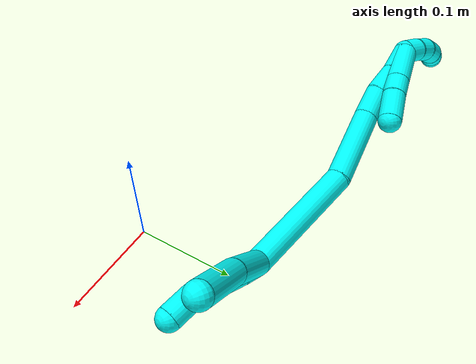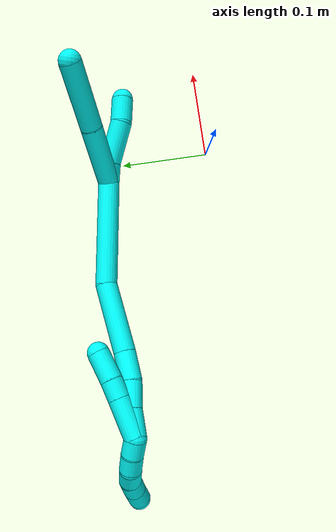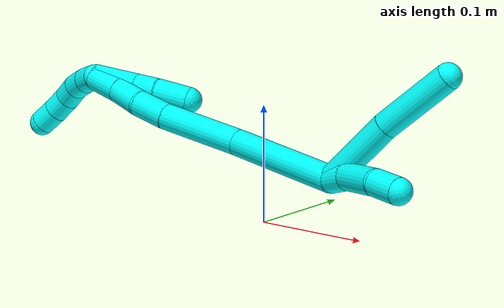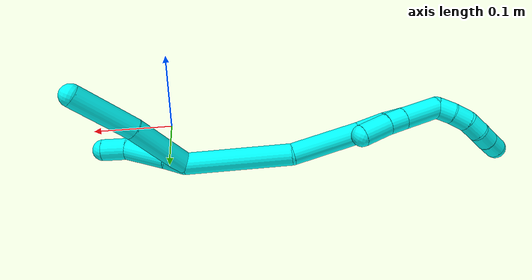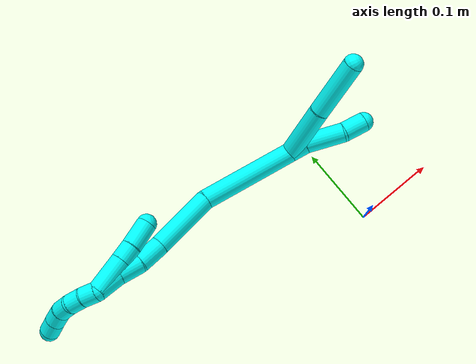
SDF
<sdf version="1.7">
 <world name="default">
  <model name="3">
   <static>0</static>
   <link name="3">
    <collision name="collision-cylinder-e_1_2_8">
     <pose>-0.001816 -0.020387 -0.03132 2.56457 -0.048566 -0.163305</pose>
     <geometry><cylinder><radius>0.0125</radius><length>0.074831</length></cylinder></geometry>
     <surface>
      <friction><ode><mu>1.16</mu><mu2>1.16</mu2><slip1>0</slip1><slip2>0</slip2></ode></friction>
      <contact><ode><kp>1e+06</kp><kd>1</kd><max_vel>0</max_vel><min_depth>0.001</min_depth></ode></contact>
     </surface>
    </collision>
    <visual name="visual-cylinder-e_1_2_8">
     <pose>-0.001816 -0.020387 -0.03132 2.56457 -0.048566 -0.163305</pose>
     <geometry><cylinder><radius>0.0125</radius><length>0.074831</length></cylinder></geometry>
     <material><ambient>0.003922 1 0.996078 1</ambient></material>
    </visual>
    <collision name="collision-cylinder-e_2_8_6">
     <pose>-0.002241 -0.059493 -0.095203 2.61985 0.03704 0.138544</pose>
     <geometry><cylinder><radius>0.0125</radius><length>0.075169</length></cylinder></geometry>
     <surface>
      <friction><ode><mu>1.16</mu><mu2>1.16</mu2><slip1>0</slip1><slip2>0</slip2></ode></friction>
      <contact><ode><kp>1e+06</kp><kd>1</kd><max_vel>0</max_vel><min_depth>0.001</min_depth></ode></contact>
     </surface>
    </collision>
    <visual name="visual-cylinder-e_2_8_6">
     <pose>-0.002241 -0.059493 -0.095203 2.61985 0.03704 0.138544</pose>
     <geometry><cylinder><radius>0.0125</radius><length>0.075169</length></cylinder></geometry>
     <material><ambient>0.003922 1 0.996078 1</ambient></material>
    </visual>
    <collision name="collision-cylinder-e_1_2_9">
     <pose>0.001102 0.000188 -0.011293 -3.12497 0.097249 -2.80317</pose>
     <geometry><cylinder><radius>0.0125</radius><length>0.022696</length></cylinder></geometry>
     <surface>
      <friction><ode><mu>1.16</mu><mu2>1.16</mu2><slip1>0</slip1><slip2>0</slip2></ode></friction>
      <contact><ode><kp>1e+06</kp><kd>1</kd><max_vel>0</max_vel><min_depth>0.001</min_depth></ode></contact>
     </surface>
    </collision>
    <visual name="visual-cylinder-e_1_2_9">
     <pose>0.001102 0.000188 -0.011293 -3.12497 0.097249 -2.80317</pose>
     <geometry><cylinder><radius>0.0125</radius><length>0.022696</length></cylinder></geometry>
     <material><ambient>0.003922 1 0.996078 1</ambient></material>
    </visual>
    <collision name="collision-cylinder-e_2_9_10">
     <pose>0.004009 0.007282 -0.045813 -2.85256 0.074369 -0.500535</pose>
     <geometry><cylinder><radius>0.0125</radius><length>0.048599</length></cylinder></geometry>
     <surface>
      <friction><ode><mu>1.16</mu><mu2>1.16</mu2><slip1>0</slip1><slip2>0</slip2></ode></friction>
      <contact><ode><kp>1e+06</kp><kd>1</kd><max_vel>0</max_vel><min_depth>0.001</min_depth></ode></contact>
     </surface>
    </collision>
    <visual name="visual-cylinder-e_2_9_10">
     <pose>0.004009 0.007282 -0.045813 -2.85256 0.074369 -0.500535</pose>
     <geometry><cylinder><radius>0.0125</radius><length>0.048599</length></cylinder></geometry>
     <material><ambient>0.003922 1 0.996078 1</ambient></material>
    </visual>
    <collision name="collision-cylinder-e_3_10_5">
     <pose>0.010963 0.018117 -0.081849 -2.84401 0.366922 -1.78253</pose>
     <geometry><cylinder><radius>0.0125</radius><length>0.028705</length></cylinder></geometry>
     <surface>
      <friction><ode><mu>1.16</mu><mu2>1.16</mu2><slip1>0</slip1><slip2>0</slip2></ode></friction>
      <contact><ode><kp>1e+06</kp><kd>1</kd><max_vel>0</max_vel><min_depth>0.001</min_depth></ode></contact>
     </surface>
    </collision>
    <visual name="visual-cylinder-e_3_10_5">
     <pose>0.010963 0.018117 -0.081849 -2.84401 0.366922 -1.78253</pose>
     <geometry><cylinder><radius>0.0125</radius><length>0.028705</length></cylinder></geometry>
     <material><ambient>0.003922 1 0.996078 1</ambient></material>
    </visual>
    <collision name="collision-cylinder-e_1_2_11">
     <pose>-0.024529 -0.016387 0.054368 0.292749 -0.407758 -0.060943</pose>
     <geometry><cylinder><radius>0.0125</radius><length>0.12371</length></cylinder></geometry>
     <surface>
      <friction><ode><mu>1.16</mu><mu2>1.16</mu2><slip1>0</slip1><slip2>0</slip2></ode></friction>
      <contact><ode><kp>1e+06</kp><kd>1</kd><max_vel>0</max_vel><min_depth>0.001</min_depth></ode></contact>
     </surface>
    </collision>
    <visual name="visual-cylinder-e_1_2_11">
     <pose>-0.024529 -0.016387 0.054368 0.292749 -0.407758 -0.060943</pose>
     <geometry><cylinder><radius>0.0125</radius><length>0.12371</length></cylinder></geometry>
     <material><ambient>0.003922 1 0.996078 1</ambient></material>
    </visual>
    <collision name="collision-cylinder-e_2_11_12">
     <pose>-0.074828 -0.037916 0.139777 0.16417 -0.686242 -0.058765</pose>
     <geometry><cylinder><radius>0.0125</radius><length>0.081341</length></cylinder></geometry>
     <surface>
      <friction><ode><mu>1.16</mu><mu2>1.16</mu2><slip1>0</slip1><slip2>0</slip2></ode></friction>
      <contact><ode><kp>1e+06</kp><kd>1</kd><max_vel>0</max_vel><min_depth>0.001</min_depth></ode></contact>
     </surface>
    </collision>
    <visual name="visual-cylinder-e_2_11_12">
     <pose>-0.074828 -0.037916 0.139777 0.16417 -0.686242 -0.058765</pose>
     <geometry><cylinder><radius>0.0125</radius><length>0.081341</length></cylinder></geometry>
     <material><ambient>0.003922 1 0.996078 1</ambient></material>
    </visual>
    <collision name="collision-cylinder-e_3_12_13">
     <pose>-0.111285 -0.046657 0.182954 0.288237 -0.701118 -0.106034</pose>
     <geometry><cylinder><radius>0.0125</radius><length>0.033133</length></cylinder></geometry>
     <surface>
      <friction><ode><mu>1.16</mu><mu2>1.16</mu2><slip1>0</slip1><slip2>0</slip2></ode></friction>
      <contact><ode><kp>1e+06</kp><kd>1</kd><max_vel>0</max_vel><min_depth>0.001</min_depth></ode></contact>
     </surface>
    </collision>
    <visual name="visual-cylinder-e_3_12_13">
     <pose>-0.111285 -0.046657 0.182954 0.288237 -0.701118 -0.106034</pose>
     <geometry><cylinder><radius>0.0125</radius><length>0.033133</length></cylinder></geometry>
     <material><ambient>0.003922 1 0.996078 1</ambient></material>
    </visual>
    <collision name="collision-cylinder-e_4_13_14">
     <pose>-0.129685 -0.055934 0.206984 0.445474 -0.529558 -0.122672</pose>
     <geometry><cylinder><radius>0.0125</radius><length>0.030541</length></cylinder></geometry>
     <surface>
      <friction><ode><mu>1.16</mu><mu2>1.16</mu2><slip1>0</slip1><slip2>0</slip2></ode></friction>
      <contact><ode><kp>1e+06</kp><kd>1</kd><max_vel>0</max_vel><min_depth>0.001</min_depth></ode></contact>
     </surface>
    </collision>
    <visual name="visual-cylinder-e_4_13_14">
     <pose>-0.129685 -0.055934 0.206984 0.445474 -0.529558 -0.122672</pose>
     <geometry><cylinder><radius>0.0125</radius><length>0.030541</length></cylinder></geometry>
     <material><ambient>0.003922 1 0.996078 1</ambient></material>
    </visual>
    <collision name="collision-cylinder-e_5_14_1">
     <pose>-0.146893 -0.065702 0.23061 0.335332 -0.652437 -0.114395</pose>
     <geometry><cylinder><radius>0.0125</radius><length>0.031274</length></cylinder></geometry>
     <surface>
      <friction><ode><mu>1.16</mu><mu2>1.16</mu2><slip1>0</slip1><slip2>0</slip2></ode></friction>
      <contact><ode><kp>1e+06</kp><kd>1</kd><max_vel>0</max_vel><min_depth>0.001</min_depth></ode></contact>
     </surface>
    </collision>
    <visual name="visual-cylinder-e_5_14_1">
     <pose>-0.146893 -0.065702 0.23061 0.335332 -0.652437 -0.114395</pose>
     <geometry><cylinder><radius>0.0125</radius><length>0.031274</length></cylinder></geometry>
     <material><ambient>0.003922 1 0.996078 1</ambient></material>
    </visual>
    <collision name="collision-cylinder-e_1_1_15">
     <pose>-0.156421 -0.070429 0.252323 0.063902 -0.00343 -0.00011</pose>
     <geometry><cylinder><radius>0.0125</radius><length>0.02</length></cylinder></geometry>
     <surface>
      <friction><ode><mu>1.16</mu><mu2>1.16</mu2><slip1>0</slip1><slip2>0</slip2></ode></friction>
      <contact><ode><kp>1e+06</kp><kd>1</kd><max_vel>0</max_vel><min_depth>0.001</min_depth></ode></contact>
     </surface>
    </collision>
    <visual name="visual-cylinder-e_1_1_15">
     <pose>-0.156421 -0.070429 0.252323 0.063902 -0.00343 -0.00011</pose>
     <geometry><cylinder><radius>0.0125</radius><length>0.02</length></cylinder></geometry>
     <material><ambient>0.003922 1 0.996078 1</ambient></material>
    </visual>
    <collision name="collision-cylinder-e_2_15_16">
     <pose>-0.156086 -0.070177 0.272256 -0.089217 0.036946 -0.001649</pose>
     <geometry><cylinder><radius>0.0125</radius><length>0.02</length></cylinder></geometry>
     <surface>
      <friction><ode><mu>1.16</mu><mu2>1.16</mu2><slip1>0</slip1><slip2>0</slip2></ode></friction>
      <contact><ode><kp>1e+06</kp><kd>1</kd><max_vel>0</max_vel><min_depth>0.001</min_depth></ode></contact>
     </surface>
    </collision>
    <visual name="visual-cylinder-e_2_15_16">
     <pose>-0.156086 -0.070177 0.272256 -0.089217 0.036946 -0.001649</pose>
     <geometry><cylinder><radius>0.0125</radius><length>0.02</length></cylinder></geometry>
     <material><ambient>0.003922 1 0.996078 1</ambient></material>
    </visual>
    <collision name="collision-cylinder-e_3_16_17">
     <pose>-0.154022 -0.065974 0.291491 -0.342855 0.170289 -0.029551</pose>
     <geometry><cylinder><radius>0.0125</radius><length>0.02</length></cylinder></geometry>
     <surface>
      <friction><ode><mu>1.16</mu><mu2>1.16</mu2><slip1>0</slip1><slip2>0</slip2></ode></friction>
      <contact><ode><kp>1e+06</kp><kd>1</kd><max_vel>0</max_vel><min_depth>0.001</min_depth></ode></contact>
     </surface>
    </collision>
    <visual name="visual-cylinder-e_3_16_17">
     <pose>-0.154022 -0.065974 0.291491 -0.342855 0.170289 -0.029551</pose>
     <geometry><cylinder><radius>0.0125</radius><length>0.02</length></cylinder></geometry>
     <material><ambient>0.003922 1 0.996078 1</ambient></material>
    </visual>
    <collision name="collision-cylinder-e_4_17_18">
     <pose>-0.152019 -0.057335 0.309231 -0.561951 0.030829 -0.008898</pose>
     <geometry><cylinder><radius>0.0125</radius><length>0.02</length></cylinder></geometry>
     <surface>
      <friction><ode><mu>1.16</mu><mu2>1.16</mu2><slip1>0</slip1><slip2>0</slip2></ode></friction>
      <contact><ode><kp>1e+06</kp><kd>1</kd><max_vel>0</max_vel><min_depth>0.001</min_depth></ode></contact>
     </surface>
    </collision>
    <visual name="visual-cylinder-e_4_17_18">
     <pose>-0.152019 -0.057335 0.309231 -0.561951 0.030829 -0.008898</pose>
     <geometry><cylinder><radius>0.0125</radius><length>0.02</length></cylinder></geometry>
     <material><ambient>0.003922 1 0.996078 1</ambient></material>
    </visual>
    <collision name="collision-cylinder-e_5_18_4">
     <pose>-0.15205 -0.046483 0.326016 -0.585897 -0.033952 0.010242</pose>
     <geometry><cylinder><radius>0.0125</radius><length>0.02</length></cylinder></geometry>
     <surface>
      <friction><ode><mu>1.16</mu><mu2>1.16</mu2><slip1>0</slip1><slip2>0</slip2></ode></friction>
      <contact><ode><kp>1e+06</kp><kd>1</kd><max_vel>0</max_vel><min_depth>0.001</min_depth></ode></contact>
     </surface>
    </collision>
    <visual name="visual-cylinder-e_5_18_4">
     <pose>-0.15205 -0.046483 0.326016 -0.585897 -0.033952 0.010242</pose>
     <geometry><cylinder><radius>0.0125</radius><length>0.02</length></cylinder></geometry>
     <material><ambient>0.003922 1 0.996078 1</ambient></material>
    </visual>
    <collision name="collision-cylinder-e_1_1_19">
     <pose>-0.141212 -0.070041 0.225551 3.12665 0.734779 3.10278</pose>
     <geometry><cylinder><radius>0.0125</radius><length>0.045268</length></cylinder></geometry>
     <surface>
      <friction><ode><mu>1.16</mu><mu2>1.16</mu2><slip1>0</slip1><slip2>0</slip2></ode></friction>
      <contact><ode><kp>1e+06</kp><kd>1</kd><max_vel>0</max_vel><min_depth>0.001</min_depth></ode></contact>
     </surface>
    </collision>
    <visual name="visual-cylinder-e_1_1_19">
     <pose>-0.141212 -0.070041 0.225551 3.12665 0.734779 3.10278</pose>
     <geometry><cylinder><radius>0.0125</radius><length>0.045268</length></cylinder></geometry>
     <material><ambient>0.003922 1 0.996078 1</ambient></material>
    </visual>
    <collision name="collision-cylinder-e_2_19_20">
     <pose>-0.118826 -0.07048 0.200935 3.1176 0.744623 3.08018</pose>
     <geometry><cylinder><radius>0.0125</radius><length>0.021284</length></cylinder></geometry>
     <surface>
      <friction><ode><mu>1.16</mu><mu2>1.16</mu2><slip1>0</slip1><slip2>0</slip2></ode></friction>
      <contact><ode><kp>1e+06</kp><kd>1</kd><max_vel>0</max_vel><min_depth>0.001</min_depth></ode></contact>
     </surface>
    </collision>
    <visual name="visual-cylinder-e_2_19_20">
     <pose>-0.118826 -0.07048 0.200935 3.1176 0.744623 3.08018</pose>
     <geometry><cylinder><radius>0.0125</radius><length>0.021284</length></cylinder></geometry>
     <material><ambient>0.003922 1 0.996078 1</ambient></material>
    </visual>
    <collision name="collision-cylinder-e_3_20_3">
     <pose>-0.099331 -0.070914 0.181765 3.11989 0.824871 3.092</pose>
     <geometry><cylinder><radius>0.0125</radius><length>0.033447</length></cylinder></geometry>
     <surface>
      <friction><ode><mu>1.16</mu><mu2>1.16</mu2><slip1>0</slip1><slip2>0</slip2></ode></friction>
      <contact><ode><kp>1e+06</kp><kd>1</kd><max_vel>0</max_vel><min_depth>0.001</min_depth></ode></contact>
     </surface>
    </collision>
    <visual name="visual-cylinder-e_3_20_3">
     <pose>-0.099331 -0.070914 0.181765 3.11989 0.824871 3.092</pose>
     <geometry><cylinder><radius>0.0125</radius><length>0.033447</length></cylinder></geometry>
     <material><ambient>0.003922 1 0.996078 1</ambient></material>
    </visual>
    <collision name="collision-sphere-3">
     <pose>-0.087048 -0.07116 0.170418 0 -0 0</pose>
     <geometry><sphere><radius>0.0125</radius></sphere></geometry>
     <surface>
      <friction><ode><mu>1.16</mu><mu2>1.16</mu2><slip1>0</slip1><slip2>0</slip2></ode></friction>
      <contact><ode><kp>1e+06</kp><kd>1</kd><max_vel>0</max_vel><min_depth>0.001</min_depth></ode></contact>
     </surface>
    </collision>
    <visual name="visual-sphere-3">
     <pose>-0.087048 -0.07116 0.170418 0 -0 0</pose>
     <geometry><sphere><radius>0.0125</radius></sphere></geometry>
     <material><ambient>0.003922 1 0.996078 1</ambient></material>
    </visual>
    <collision name="collision-sphere-20">
     <pose>-0.111613 -0.070668 0.193112 0 -0 0</pose>
     <geometry><sphere><radius>0.0125</radius></sphere></geometry>
     <surface>
      <friction><ode><mu>1.16</mu><mu2>1.16</mu2><slip1>0</slip1><slip2>0</slip2></ode></friction>
      <contact><ode><kp>1e+06</kp><kd>1</kd><max_vel>0</max_vel><min_depth>0.001</min_depth></ode></contact>
     </surface>
    </collision>
    <visual name="visual-sphere-20">
     <pose>-0.111613 -0.070668 0.193112 0 -0 0</pose>
     <geometry><sphere><radius>0.0125</radius></sphere></geometry>
     <material><ambient>0.003922 1 0.996078 1</ambient></material>
    </visual>
    <collision name="collision-sphere-19">
     <pose>-0.126038 -0.070292 0.208759 0 -0 0</pose>
     <geometry><sphere><radius>0.0125</radius></sphere></geometry>
     <surface>
      <friction><ode><mu>1.16</mu><mu2>1.16</mu2><slip1>0</slip1><slip2>0</slip2></ode></friction>
      <contact><ode><kp>1e+06</kp><kd>1</kd><max_vel>0</max_vel><min_depth>0.001</min_depth></ode></contact>
     </surface>
    </collision>
    <visual name="visual-sphere-19">
     <pose>-0.126038 -0.070292 0.208759 0 -0 0</pose>
     <geometry><sphere><radius>0.0125</radius></sphere></geometry>
     <material><ambient>0.003922 1 0.996078 1</ambient></material>
    </visual>
    <collision name="collision-sphere-5">
     <pose>0.016112 0.022046 -0.094657 0 -0 0</pose>
     <geometry><sphere><radius>0.0125</radius></sphere></geometry>
     <surface>
      <friction><ode><mu>1.16</mu><mu2>1.16</mu2><slip1>0</slip1><slip2>0</slip2></ode></friction>
      <contact><ode><kp>1e+06</kp><kd>1</kd><max_vel>0</max_vel><min_depth>0.001</min_depth></ode></contact>
     </surface>
    </collision>
    <visual name="visual-sphere-5">
     <pose>0.016112 0.022046 -0.094657 0 -0 0</pose>
     <geometry><sphere><radius>0.0125</radius></sphere></geometry>
     <material><ambient>0.003922 1 0.996078 1</ambient></material>
    </visual>
    <collision name="collision-sphere-10">
     <pose>0.005815 0.014189 -0.06904 0 -0 0</pose>
     <geometry><sphere><radius>0.0125</radius></sphere></geometry>
     <surface>
      <friction><ode><mu>1.16</mu><mu2>1.16</mu2><slip1>0</slip1><slip2>0</slip2></ode></friction>
      <contact><ode><kp>1e+06</kp><kd>1</kd><max_vel>0</max_vel><min_depth>0.001</min_depth></ode></contact>
     </surface>
    </collision>
    <visual name="visual-sphere-10">
     <pose>0.005815 0.014189 -0.06904 0 -0 0</pose>
     <geometry><sphere><radius>0.0125</radius></sphere></geometry>
     <material><ambient>0.003922 1 0.996078 1</ambient></material>
    </visual>
    <collision name="collision-sphere-6">
     <pose>-0.000849 -0.078213 -0.127764 0 -0 0</pose>
     <geometry><sphere><radius>0.0125</radius></sphere></geometry>
     <surface>
      <friction><ode><mu>1.16</mu><mu2>1.16</mu2><slip1>0</slip1><slip2>0</slip2></ode></friction>
      <contact><ode><kp>1e+06</kp><kd>1</kd><max_vel>0</max_vel><min_depth>0.001</min_depth></ode></contact>
     </surface>
    </collision>
    <visual name="visual-sphere-6">
     <pose>-0.000849 -0.078213 -0.127764 0 -0 0</pose>
     <geometry><sphere><radius>0.0125</radius></sphere></geometry>
     <material><ambient>0.003922 1 0.996078 1</ambient></material>
    </visual>
    <collision name="collision-sphere-9">
     <pose>0.002204 0.000376 -0.022586 0 -0 0</pose>
     <geometry><sphere><radius>0.0125</radius></sphere></geometry>
     <surface>
      <friction><ode><mu>1.16</mu><mu2>1.16</mu2><slip1>0</slip1><slip2>0</slip2></ode></friction>
      <contact><ode><kp>1e+06</kp><kd>1</kd><max_vel>0</max_vel><min_depth>0.001</min_depth></ode></contact>
     </surface>
    </collision>
    <visual name="visual-sphere-9">
     <pose>0.002204 0.000376 -0.022586 0 -0 0</pose>
     <geometry><sphere><radius>0.0125</radius></sphere></geometry>
     <material><ambient>0.003922 1 0.996078 1</ambient></material>
    </visual>
    <collision name="collision-sphere-2">
     <geometry><sphere><radius>0.0125</radius></sphere></geometry>
     <surface>
      <friction><ode><mu>1.16</mu><mu2>1.16</mu2><slip1>0</slip1><slip2>0</slip2></ode></friction>
      <contact><ode><kp>1e+06</kp><kd>1</kd><max_vel>0</max_vel><min_depth>0.001</min_depth></ode></contact>
     </surface>
    </collision>
    <visual name="visual-sphere-2">
     <geometry><sphere><radius>0.0125</radius></sphere></geometry>
     <material><ambient>0.003922 1 0.996078 1</ambient></material>
    </visual>
    <collision name="collision-sphere-8">
     <pose>-0.003633 -0.040774 -0.062641 0 -0 0</pose>
     <geometry><sphere><radius>0.0125</radius></sphere></geometry>
     <surface>
      <friction><ode><mu>1.16</mu><mu2>1.16</mu2><slip1>0</slip1><slip2>0</slip2></ode></friction>
      <contact><ode><kp>1e+06</kp><kd>1</kd><max_vel>0</max_vel><min_depth>0.001</min_depth></ode></contact>
     </surface>
    </collision>
    <visual name="visual-sphere-8">
     <pose>-0.003633 -0.040774 -0.062641 0 -0 0</pose>
     <geometry><sphere><radius>0.0125</radius></sphere></geometry>
     <material><ambient>0.003922 1 0.996078 1</ambient></material>
    </visual>
    <collision name="collision-sphere-11">
     <pose>-0.049058 -0.032774 0.108736 0 -0 0</pose>
     <geometry><sphere><radius>0.0125</radius></sphere></geometry>
     <surface>
      <friction><ode><mu>1.16</mu><mu2>1.16</mu2><slip1>0</slip1><slip2>0</slip2></ode></friction>
      <contact><ode><kp>1e+06</kp><kd>1</kd><max_vel>0</max_vel><min_depth>0.001</min_depth></ode></contact>
     </surface>
    </collision>
    <visual name="visual-sphere-11">
     <pose>-0.049058 -0.032774 0.108736 0 -0 0</pose>
     <geometry><sphere><radius>0.0125</radius></sphere></geometry>
     <material><ambient>0.003922 1 0.996078 1</ambient></material>
    </visual>
    <collision name="collision-sphere-12">
     <pose>-0.100598 -0.043058 0.170818 0 -0 0</pose>
     <geometry><sphere><radius>0.0125</radius></sphere></geometry>
     <surface>
      <friction><ode><mu>1.16</mu><mu2>1.16</mu2><slip1>0</slip1><slip2>0</slip2></ode></friction>
      <contact><ode><kp>1e+06</kp><kd>1</kd><max_vel>0</max_vel><min_depth>0.001</min_depth></ode></contact>
     </surface>
    </collision>
    <visual name="visual-sphere-12">
     <pose>-0.100598 -0.043058 0.170818 0 -0 0</pose>
     <geometry><sphere><radius>0.0125</radius></sphere></geometry>
     <material><ambient>0.003922 1 0.996078 1</ambient></material>
    </visual>
    <collision name="collision-sphere-13">
     <pose>-0.121971 -0.050255 0.195091 0 -0 0</pose>
     <geometry><sphere><radius>0.0125</radius></sphere></geometry>
     <surface>
      <friction><ode><mu>1.16</mu><mu2>1.16</mu2><slip1>0</slip1><slip2>0</slip2></ode></friction>
      <contact><ode><kp>1e+06</kp><kd>1</kd><max_vel>0</max_vel><min_depth>0.001</min_depth></ode></contact>
     </surface>
    </collision>
    <visual name="visual-sphere-13">
     <pose>-0.121971 -0.050255 0.195091 0 -0 0</pose>
     <geometry><sphere><radius>0.0125</radius></sphere></geometry>
     <material><ambient>0.003922 1 0.996078 1</ambient></material>
    </visual>
    <collision name="collision-sphere-14">
     <pose>-0.137399 -0.061613 0.218877 0 -0 0</pose>
     <geometry><sphere><radius>0.0125</radius></sphere></geometry>
     <surface>
      <friction><ode><mu>1.16</mu><mu2>1.16</mu2><slip1>0</slip1><slip2>0</slip2></ode></friction>
      <contact><ode><kp>1e+06</kp><kd>1</kd><max_vel>0</max_vel><min_depth>0.001</min_depth></ode></contact>
     </surface>
    </collision>
    <visual name="visual-sphere-14">
     <pose>-0.137399 -0.061613 0.218877 0 -0 0</pose>
     <geometry><sphere><radius>0.0125</radius></sphere></geometry>
     <material><ambient>0.003922 1 0.996078 1</ambient></material>
    </visual>
    <collision name="collision-sphere-1">
     <pose>-0.156387 -0.069791 0.242343 0 -0 0</pose>
     <geometry><sphere><radius>0.0125</radius></sphere></geometry>
     <surface>
      <friction><ode><mu>1.16</mu><mu2>1.16</mu2><slip1>0</slip1><slip2>0</slip2></ode></friction>
      <contact><ode><kp>1e+06</kp><kd>1</kd><max_vel>0</max_vel><min_depth>0.001</min_depth></ode></contact>
     </surface>
    </collision>
    <visual name="visual-sphere-1">
     <pose>-0.156387 -0.069791 0.242343 0 -0 0</pose>
     <geometry><sphere><radius>0.0125</radius></sphere></geometry>
     <material><ambient>0.003922 1 0.996078 1</ambient></material>
    </visual>
    <collision name="collision-sphere-18">
     <pose>-0.151711 -0.052009 0.317689 0 -0 0</pose>
     <geometry><sphere><radius>0.0125</radius></sphere></geometry>
     <surface>
      <friction><ode><mu>1.16</mu><mu2>1.16</mu2><slip1>0</slip1><slip2>0</slip2></ode></friction>
      <contact><ode><kp>1e+06</kp><kd>1</kd><max_vel>0</max_vel><min_depth>0.001</min_depth></ode></contact>
     </surface>
    </collision>
    <visual name="visual-sphere-18">
     <pose>-0.151711 -0.052009 0.317689 0 -0 0</pose>
     <geometry><sphere><radius>0.0125</radius></sphere></geometry>
     <material><ambient>0.003922 1 0.996078 1</ambient></material>
    </visual>
    <collision name="collision-sphere-15">
     <pose>-0.156455 -0.071068 0.262302 0 -0 0</pose>
     <geometry><sphere><radius>0.0125</radius></sphere></geometry>
     <surface>
      <friction><ode><mu>1.16</mu><mu2>1.16</mu2><slip1>0</slip1><slip2>0</slip2></ode></friction>
      <contact><ode><kp>1e+06</kp><kd>1</kd><max_vel>0</max_vel><min_depth>0.001</min_depth></ode></contact>
     </surface>
    </collision>
    <visual name="visual-sphere-15">
     <pose>-0.156455 -0.071068 0.262302 0 -0 0</pose>
     <geometry><sphere><radius>0.0125</radius></sphere></geometry>
     <material><ambient>0.003922 1 0.996078 1</ambient></material>
    </visual>
    <collision name="collision-sphere-16">
     <pose>-0.155717 -0.069287 0.282209 0 -0 0</pose>
     <geometry><sphere><radius>0.0125</radius></sphere></geometry>
     <surface>
      <friction><ode><mu>1.16</mu><mu2>1.16</mu2><slip1>0</slip1><slip2>0</slip2></ode></friction>
      <contact><ode><kp>1e+06</kp><kd>1</kd><max_vel>0</max_vel><min_depth>0.001</min_depth></ode></contact>
     </surface>
    </collision>
    <visual name="visual-sphere-16">
     <pose>-0.155717 -0.069287 0.282209 0 -0 0</pose>
     <geometry><sphere><radius>0.0125</radius></sphere></geometry>
     <material><ambient>0.003922 1 0.996078 1</ambient></material>
    </visual>
    <collision name="collision-sphere-17">
     <pose>-0.152327 -0.062661 0.300773 0 -0 0</pose>
     <geometry><sphere><radius>0.0125</radius></sphere></geometry>
     <surface>
      <friction><ode><mu>1.16</mu><mu2>1.16</mu2><slip1>0</slip1><slip2>0</slip2></ode></friction>
      <contact><ode><kp>1e+06</kp><kd>1</kd><max_vel>0</max_vel><min_depth>0.001</min_depth></ode></contact>
     </surface>
    </collision>
    <visual name="visual-sphere-17">
     <pose>-0.152327 -0.062661 0.300773 0 -0 0</pose>
     <geometry><sphere><radius>0.0125</radius></sphere></geometry>
     <material><ambient>0.003922 1 0.996078 1</ambient></material>
    </visual>
    <collision name="collision-sphere-4">
     <pose>-0.15239 -0.040956 0.334344 0 -0 0</pose>
     <geometry><sphere><radius>0.0125</radius></sphere></geometry>
     <surface>
      <friction><ode><mu>1.16</mu><mu2>1.16</mu2><slip1>0</slip1><slip2>0</slip2></ode></friction>
      <contact><ode><kp>1e+06</kp><kd>1</kd><max_vel>0</max_vel><min_depth>0.001</min_depth></ode></contact>
     </surface>
    </collision>
    <visual name="visual-sphere-4">
     <pose>-0.15239 -0.040956 0.334344 0 -0 0</pose>
     <geometry><sphere><radius>0.0125</radius></sphere></geometry>
     <material><ambient>0.003922 1 0.996078 1</ambient></material>
    </visual>
    <inertial>
     <pose>-0.065052 -0.038387 0.097269 0 -0 0</pose>
     <mass>0.75</mass>
     <inertia>
      <ixx>0.000247</ixx>
      <ixy>0</ixy>
      <ixz>0</ixz>
      <iyy>0.000137</iyy>
      <iyz>0</iyz>
      <izz>0.000178</izz>
     </inertia>
    </inertial>
   </link>
   <pose>-0.019151 0.120179 0.011868 -2.04757 0.653025 0.980184</pose>
  </model>
 </world>
</sdf>
